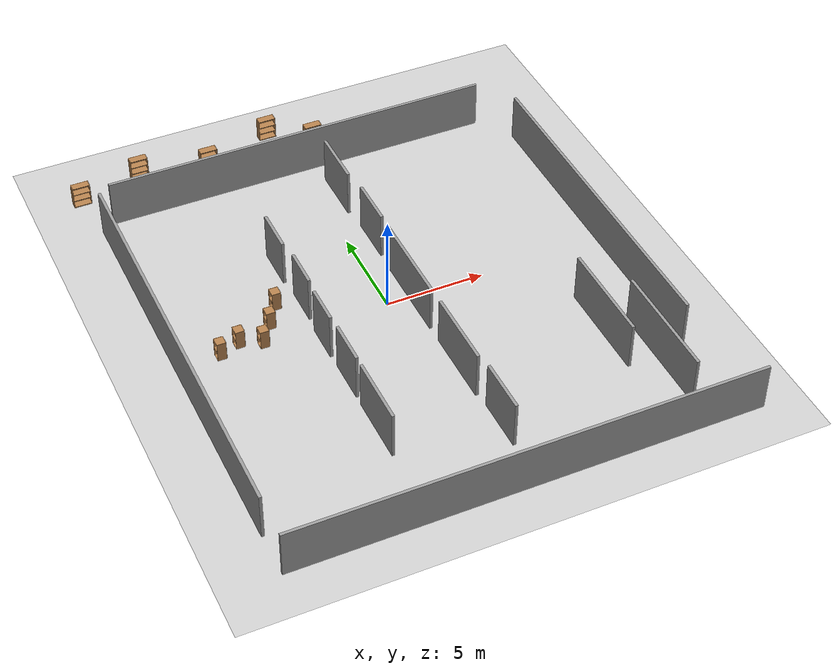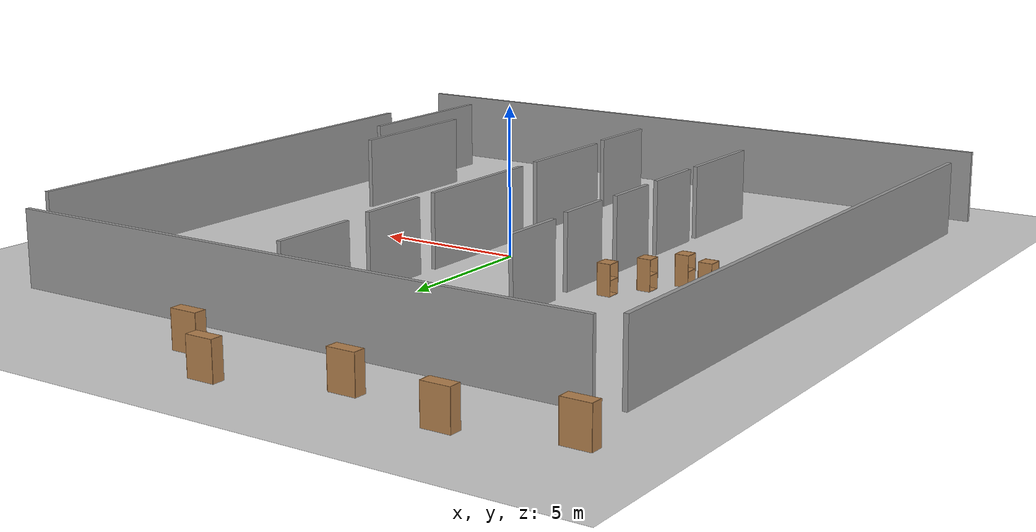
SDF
<sdf version="1.6">
 <world name="default">
  <model name="ground_plane">
   <static>1</static>
   <link name="link">
    <collision name="collision">
     <geometry><plane><normal>0 0 1</normal><size>100 100</size></plane></geometry>
     <surface><friction><ode><mu>100</mu><mu2>50</mu2></ode></friction></surface>
    </collision>
    <visual name="visual">
     <cast_shadows>0</cast_shadows>
     <geometry><plane><normal>0 0 1</normal><size>100 100</size></plane></geometry>
     <material>
      <script><uri>file://media/materials/scripts/gazebo.material</uri><name>Gazebo/Grey</name></script>
     </material>
    </visual>
   </link>
  </model>
  <model name="room13">
   <pose>0.954406 -1.0163 0 0 -0 0</pose>
   <link name="Wall_0">
    <collision name="Wall_0_Collision">
     <geometry><box><size>20.25 0.15 2.5</size></box></geometry>
     <pose>0 0 1.25 0 -0 0</pose>
    </collision>
    <visual name="Wall_0_Visual">
     <pose>0 0 1.25 0 -0 0</pose>
     <geometry><box><size>20.25 0.15 2.5</size></box></geometry>
     <material>
      <script><uri>file://media/materials/scripts/gazebo.material</uri><name>Gazebo/Grey</name></script>
      <ambient>1 1 1 1</ambient>
     </material>
     <meta><layer>0</layer></meta>
    </visual>
    <pose>-0.956756 12.1861 0 0 -0 0</pose>
   </link>
   <link name="Wall_10">
    <collision name="Wall_10_Collision">
     <geometry><box><size>2.75 0.15 2.5</size></box></geometry>
     <pose>0 0 1.25 0 -0 0</pose>
    </collision>
    <visual name="Wall_10_Visual">
     <pose>0 0 1.25 0 -0 0</pose>
     <geometry><box><size>2.75 0.15 2.5</size></box></geometry>
     <material>
      <script><uri>file://media/materials/scripts/gazebo.material</uri><name>Gazebo/Grey</name></script>
      <ambient>1 1 1 1</ambient>
     </material>
     <meta><layer>0</layer></meta>
    </visual>
    <pose>0.401491 -8.32568 0 0 -0 -1.5708</pose>
   </link>
   <link name="Wall_12">
    <collision name="Wall_12_Collision">
     <geometry><box><size>3 0.15 2.5</size></box></geometry>
     <pose>0 0 1.25 0 -0 0</pose>
    </collision>
    <visual name="Wall_12_Visual">
     <pose>0 0 1.25 0 -0 0</pose>
     <geometry><box><size>3 0.15 2.5</size></box></geometry>
     <material>
      <script><uri>file://media/materials/scripts/gazebo.material</uri><name>Gazebo/Grey</name></script>
      <ambient>1 1 1 1</ambient>
     </material>
     <meta><layer>0</layer></meta>
    </visual>
    <pose>0.055689 9.53105 0 0 -0 -1.5708</pose>
   </link>
   <link name="Wall_15">
    <collision name="Wall_15_Collision">
     <geometry><box><size>17.5 0.15 2.5</size></box></geometry>
     <pose>0 0 1.25 0 -0 0</pose>
    </collision>
    <visual name="Wall_15_Visual">
     <pose>0 0 1.25 0 -0 0</pose>
     <geometry><box><size>17.5 0.15 2.5</size></box></geometry>
     <material>
      <script><uri>file://media/materials/scripts/gazebo.material</uri><name>Gazebo/Grey</name></script>
      <ambient>1 1 1 1</ambient>
     </material>
     <meta><layer>0</layer></meta>
    </visual>
    <pose>10.5096 1.53625 0 0 -0 -1.5708</pose>
   </link>
   <link name="Wall_17">
    <collision name="Wall_17_Collision">
     <geometry><box><size>23.5 0.15 2.5</size></box></geometry>
     <pose>0 0 1.25 0 -0 0</pose>
    </collision>
    <visual name="Wall_17_Visual">
     <pose>0 0 1.25 0 -0 0</pose>
     <geometry><box><size>23.5 0.15 2.5</size></box></geometry>
     <material>
      <script><uri>file://media/materials/scripts/gazebo.material</uri><name>Gazebo/Grey</name></script>
      <ambient>1 1 1 1</ambient>
     </material>
     <meta><layer>0</layer></meta>
    </visual>
    <pose>0.026601 -12.1861 0 0 -0 0</pose>
   </link>
   <link name="Wall_19">
    <collision name="Wall_19_Collision">
     <geometry><box><size>6 0.15 2.5</size></box></geometry>
     <pose>0 0 1.25 0 -0 0</pose>
    </collision>
    <visual name="Wall_19_Visual">
     <pose>0 0 1.25 0 -0 0</pose>
     <geometry><box><size>6 0.15 2.5</size></box></geometry>
     <material>
      <script><uri>file://media/materials/scripts/gazebo.material</uri><name>Gazebo/Grey</name></script>
      <ambient>1 1 1 1</ambient>
     </material>
     <meta><layer>0</layer></meta>
    </visual>
    <pose>9.01995 -7.63647 0 0 -0 -1.5708</pose>
   </link>
   <link name="Wall_2">
    <collision name="Wall_2_Collision">
     <geometry><box><size>21.75 0.15 2.5</size></box></geometry>
     <pose>0 0 1.25 0 -0 0</pose>
    </collision>
    <visual name="Wall_2_Visual">
     <pose>0 0 1.25 0 -0 0</pose>
     <geometry><box><size>21.75 0.15 2.5</size></box></geometry>
     <material>
      <script><uri>file://media/materials/scripts/gazebo.material</uri><name>Gazebo/Grey</name></script>
      <ambient>1 1 1 1</ambient>
     </material>
     <meta><layer>0</layer></meta>
    </visual>
    <pose>-11.7016 0.874258 0 0 -0 -1.5708</pose>
   </link>
   <link name="Wall_21">
    <collision name="Wall_21_Collision">
     <geometry><box><size>5.25 0.15 2.5</size></box></geometry>
     <pose>0 0 1.25 0 -0 0</pose>
    </collision>
    <visual name="Wall_21_Visual">
     <pose>0 0 1.25 0 -0 0</pose>
     <geometry><box><size>5.25 0.15 2.5</size></box></geometry>
     <material>
      <script><uri>file://media/materials/scripts/gazebo.material</uri><name>Gazebo/Grey</name></script>
      <ambient>1 1 1 1</ambient>
     </material>
     <meta><layer>0</layer></meta>
    </visual>
    <pose>7.50375 -4.84809 0 0 -0 1.5708</pose>
   </link>
   <link name="Wall_23">
    <collision name="Wall_23_Collision">
     <geometry><box><size>3.5 0.15 2.5</size></box></geometry>
     <pose>0 0 1.25 0 -0 0</pose>
    </collision>
    <visual name="Wall_23_Visual">
     <pose>0 0 1.25 0 -0 0</pose>
     <geometry><box><size>3.5 0.15 2.5</size></box></geometry>
     <material>
      <script><uri>file://media/materials/scripts/gazebo.material</uri><name>Gazebo/Grey</name></script>
      <ambient>1 1 1 1</ambient>
     </material>
     <meta><layer>0</layer></meta>
    </visual>
    <pose>-4.75895 -6.30829 0 0 -0 1.5708</pose>
   </link>
   <link name="Wall_25">
    <collision name="Wall_25_Collision">
     <geometry><box><size>2.25 0.15 2.5</size></box></geometry>
     <pose>0 0 1.25 0 -0 0</pose>
    </collision>
    <visual name="Wall_25_Visual">
     <pose>0 0 1.25 0 -0 0</pose>
     <geometry><box><size>2.25 0.15 2.5</size></box></geometry>
     <material>
      <script><uri>file://media/materials/scripts/gazebo.material</uri><name>Gazebo/Grey</name></script>
      <ambient>1 1 1 1</ambient>
     </material>
     <meta><layer>0</layer></meta>
    </visual>
    <pose>-4.75895 -2.96986 0 0 -0 1.5708</pose>
   </link>
   <link name="Wall_27">
    <collision name="Wall_27_Collision">
     <geometry><box><size>2 0.15 2.5</size></box></geometry>
     <pose>0 0 1.25 0 -0 0</pose>
    </collision>
    <visual name="Wall_27_Visual">
     <pose>0 0 1.25 0 -0 0</pose>
     <geometry><box><size>2 0.15 2.5</size></box></geometry>
     <material>
      <script><uri>file://media/materials/scripts/gazebo.material</uri><name>Gazebo/Grey</name></script>
      <ambient>1 1 1 1</ambient>
     </material>
     <meta><layer>0</layer></meta>
    </visual>
    <pose>-4.81215 -0.195438 0 0 -0 1.5708</pose>
   </link>
   <link name="Wall_29">
    <collision name="Wall_29_Collision">
     <geometry><box><size>2 0.15 2.5</size></box></geometry>
     <pose>0 0 1.25 0 -0 0</pose>
    </collision>
    <visual name="Wall_29_Visual">
     <pose>0 0 1.25 0 -0 0</pose>
     <geometry><box><size>2 0.15 2.5</size></box></geometry>
     <material>
      <script><uri>file://media/materials/scripts/gazebo.material</uri><name>Gazebo/Grey</name></script>
      <ambient>1 1 1 1</ambient>
     </material>
     <meta><layer>0</layer></meta>
    </visual>
    <pose>-4.73235 2.57098 0 0 -0 1.5708</pose>
   </link>
   <link name="Wall_31">
    <collision name="Wall_31_Collision">
     <geometry><box><size>2.25 0.15 2.5</size></box></geometry>
     <pose>0 0 1.25 0 -0 0</pose>
    </collision>
    <visual name="Wall_31_Visual">
     <pose>0 0 1.25 0 -0 0</pose>
     <geometry><box><size>2.25 0.15 2.5</size></box></geometry>
     <material>
      <script><uri>file://media/materials/scripts/gazebo.material</uri><name>Gazebo/Grey</name></script>
      <ambient>1 1 1 1</ambient>
     </material>
     <meta><layer>0</layer></meta>
    </visual>
    <pose>-4.89195 5.59541 0 0 -0 1.5708</pose>
   </link>
   <link name="Wall_4">
    <collision name="Wall_4_Collision">
     <geometry><box><size>2.5 0.15 2.5</size></box></geometry>
     <pose>0 0 1.25 0 -0 0</pose>
    </collision>
    <visual name="Wall_4_Visual">
     <pose>0 0 1.25 0 -0 0</pose>
     <geometry><box><size>2.5 0.15 2.5</size></box></geometry>
     <material>
      <script><uri>file://media/materials/scripts/gazebo.material</uri><name>Gazebo/Grey</name></script>
      <ambient>1 1 1 1</ambient>
     </material>
     <meta><layer>0</layer></meta>
    </visual>
    <pose>0.24189 5.61584 0 0 -0 -1.5708</pose>
   </link>
   <link name="Wall_6">
    <collision name="Wall_6_Collision">
     <geometry><box><size>5 0.15 2.5</size></box></geometry>
     <pose>0 0 1.25 0 -0 0</pose>
    </collision>
    <visual name="Wall_6_Visual">
     <pose>0 0 1.25 0 -0 0</pose>
     <geometry><box><size>5 0.15 2.5</size></box></geometry>
     <material>
      <script><uri>file://media/materials/scripts/gazebo.material</uri><name>Gazebo/Grey</name></script>
      <ambient>1 1 1 1</ambient>
     </material>
     <meta><layer>0</layer></meta>
    </visual>
    <pose>0.21529 1.1362 0 0 -0 -1.5708</pose>
   </link>
   <link name="Wall_8">
    <collision name="Wall_8_Collision">
     <geometry><box><size>4 0.15 2.5</size></box></geometry>
     <pose>0 0 1.25 0 -0 0</pose>
    </collision>
    <visual name="Wall_8_Visual">
     <pose>0 0 1.25 0 -0 0</pose>
     <geometry><box><size>4 0.15 2.5</size></box></geometry>
     <material>
      <script><uri>file://media/materials/scripts/gazebo.material</uri><name>Gazebo/Grey</name></script>
      <ambient>1 1 1 1</ambient>
     </material>
     <meta><layer>0</layer></meta>
    </visual>
    <pose>0.24189 -4.24245 0 0 -0 -1.5708</pose>
   </link>
   <static>1</static>
  </model>
  <model name="bookshelf">
   <static>1</static>
   <link name="link">
    <inertial><mass>1</mass></inertial>
    <collision name="back">
     <pose>0 0.005 0.6 0 -0 0</pose>
     <geometry><box><size>0.9 0.01 1.2</size></box></geometry>
    </collision>
    <visual name="visual1">
     <pose>0 0.005 0.6 0 -0 0</pose>
     <geometry><box><size>0.9 0.01 1.2</size></box></geometry>
     <material>
      <script><uri>file://media/materials/scripts/gazebo.material</uri><name>Gazebo/Wood</name></script>
     </material>
    </visual>
    <collision name="left_side">
     <pose>0.45 -0.195 0.6 0 -0 0</pose>
     <geometry><box><size>0.02 0.4 1.2</size></box></geometry>
    </collision>
    <visual name="visual2">
     <pose>0.45 -0.195 0.6 0 -0 0</pose>
     <geometry><box><size>0.02 0.4 1.2</size></box></geometry>
     <material>
      <script><uri>file://media/materials/scripts/gazebo.material</uri><name>Gazebo/Wood</name></script>
     </material>
    </visual>
    <collision name="right_side">
     <pose>-0.45 -0.195 0.6 0 -0 0</pose>
     <geometry><box><size>0.02 0.4 1.2</size></box></geometry>
    </collision>
    <visual name="visual3">
     <pose>-0.45 -0.195 0.6 0 -0 0</pose>
     <geometry><box><size>0.02 0.4 1.2</size></box></geometry>
     <material>
      <script><uri>file://media/materials/scripts/gazebo.material</uri><name>Gazebo/Wood</name></script>
     </material>
    </visual>
    <collision name="bottom">
     <pose>0 -0.195 0.03 0 -0 0</pose>
     <geometry><box><size>0.88 0.4 0.06</size></box></geometry>
    </collision>
    <visual name="visual4">
     <pose>0 -0.195 0.03 0 -0 0</pose>
     <geometry><box><size>0.88 0.4 0.06</size></box></geometry>
     <material>
      <script><uri>file://media/materials/scripts/gazebo.material</uri><name>Gazebo/Wood</name></script>
     </material>
    </visual>
    <collision name="top">
     <pose>0 -0.195 1.19 0 -0 0</pose>
     <geometry><box><size>0.88 0.4 0.02</size></box></geometry>
    </collision>
    <visual name="visual5">
     <pose>0 -0.195 1.19 0 -0 0</pose>
     <geometry><box><size>0.88 0.4 0.02</size></box></geometry>
     <material>
      <script><uri>file://media/materials/scripts/gazebo.material</uri><name>Gazebo/Wood</name></script>
     </material>
    </visual>
    <collision name="low_shelf">
     <pose>0 -0.195 0.43 0 -0 0</pose>
     <geometry><box><size>0.88 0.4 0.02</size></box></geometry>
    </collision>
    <visual name="visual6">
     <pose>0 -0.195 0.43 0 -0 0</pose>
     <geometry><box><size>0.88 0.4 0.02</size></box></geometry>
     <material>
      <script><uri>file://media/materials/scripts/gazebo.material</uri><name>Gazebo/Wood</name></script>
     </material>
    </visual>
    <collision name="high_shelf">
     <pose>0 -0.195 0.8 0 -0 0</pose>
     <geometry><box><size>0.88 0.4 0.02</size></box></geometry>
    </collision>
    <visual name="visual7">
     <pose>0 -0.195 0.8 0 -0 0</pose>
     <geometry><box><size>0.88 0.4 0.02</size></box></geometry>
     <material>
      <script><uri>file://media/materials/scripts/gazebo.material</uri><name>Gazebo/Wood</name></script>
     </material>
    </visual>
   </link>
   <pose>-11.0786 13.5048 0 0 -0 0</pose>
  </model>
  <model name="bookshelf_0">
   <static>1</static>
   <link name="link">
    <inertial><mass>1</mass></inertial>
    <collision name="back">
     <pose>0 0.005 0.6 0 -0 0</pose>
     <geometry><box><size>0.9 0.01 1.2</size></box></geometry>
    </collision>
    <visual name="visual1">
     <pose>0 0.005 0.6 0 -0 0</pose>
     <geometry><box><size>0.9 0.01 1.2</size></box></geometry>
     <material>
      <script><uri>file://media/materials/scripts/gazebo.material</uri><name>Gazebo/Wood</name></script>
     </material>
    </visual>
    <collision name="left_side">
     <pose>0.45 -0.195 0.6 0 -0 0</pose>
     <geometry><box><size>0.02 0.4 1.2</size></box></geometry>
    </collision>
    <visual name="visual2">
     <pose>0.45 -0.195 0.6 0 -0 0</pose>
     <geometry><box><size>0.02 0.4 1.2</size></box></geometry>
     <material>
      <script><uri>file://media/materials/scripts/gazebo.material</uri><name>Gazebo/Wood</name></script>
     </material>
    </visual>
    <collision name="right_side">
     <pose>-0.45 -0.195 0.6 0 -0 0</pose>
     <geometry><box><size>0.02 0.4 1.2</size></box></geometry>
    </collision>
    <visual name="visual3">
     <pose>-0.45 -0.195 0.6 0 -0 0</pose>
     <geometry><box><size>0.02 0.4 1.2</size></box></geometry>
     <material>
      <script><uri>file://media/materials/scripts/gazebo.material</uri><name>Gazebo/Wood</name></script>
     </material>
    </visual>
    <collision name="bottom">
     <pose>0 -0.195 0.03 0 -0 0</pose>
     <geometry><box><size>0.88 0.4 0.06</size></box></geometry>
    </collision>
    <visual name="visual4">
     <pose>0 -0.195 0.03 0 -0 0</pose>
     <geometry><box><size>0.88 0.4 0.06</size></box></geometry>
     <material>
      <script><uri>file://media/materials/scripts/gazebo.material</uri><name>Gazebo/Wood</name></script>
     </material>
    </visual>
    <collision name="top">
     <pose>0 -0.195 1.19 0 -0 0</pose>
     <geometry><box><size>0.88 0.4 0.02</size></box></geometry>
    </collision>
    <visual name="visual5">
     <pose>0 -0.195 1.19 0 -0 0</pose>
     <geometry><box><size>0.88 0.4 0.02</size></box></geometry>
     <material>
      <script><uri>file://media/materials/scripts/gazebo.material</uri><name>Gazebo/Wood</name></script>
     </material>
    </visual>
    <collision name="low_shelf">
     <pose>0 -0.195 0.43 0 -0 0</pose>
     <geometry><box><size>0.88 0.4 0.02</size></box></geometry>
    </collision>
    <visual name="visual6">
     <pose>0 -0.195 0.43 0 -0 0</pose>
     <geometry><box><size>0.88 0.4 0.02</size></box></geometry>
     <material>
      <script><uri>file://media/materials/scripts/gazebo.material</uri><name>Gazebo/Wood</name></script>
     </material>
    </visual>
    <collision name="high_shelf">
     <pose>0 -0.195 0.8 0 -0 0</pose>
     <geometry><box><size>0.88 0.4 0.02</size></box></geometry>
    </collision>
    <visual name="visual7">
     <pose>0 -0.195 0.8 0 -0 0</pose>
     <geometry><box><size>0.88 0.4 0.02</size></box></geometry>
     <material>
      <script><uri>file://media/materials/scripts/gazebo.material</uri><name>Gazebo/Wood</name></script>
     </material>
    </visual>
   </link>
   <pose>-7.72125 14.3757 0 0 -0 0</pose>
  </model>
  <model name="bookshelf_1">
   <static>1</static>
   <link name="link">
    <inertial><mass>1</mass></inertial>
    <collision name="back">
     <pose>0 0.005 0.6 0 -0 0</pose>
     <geometry><box><size>0.9 0.01 1.2</size></box></geometry>
    </collision>
    <visual name="visual1">
     <pose>0 0.005 0.6 0 -0 0</pose>
     <geometry><box><size>0.9 0.01 1.2</size></box></geometry>
     <material>
      <script><uri>file://media/materials/scripts/gazebo.material</uri><name>Gazebo/Wood</name></script>
     </material>
    </visual>
    <collision name="left_side">
     <pose>0.45 -0.195 0.6 0 -0 0</pose>
     <geometry><box><size>0.02 0.4 1.2</size></box></geometry>
    </collision>
    <visual name="visual2">
     <pose>0.45 -0.195 0.6 0 -0 0</pose>
     <geometry><box><size>0.02 0.4 1.2</size></box></geometry>
     <material>
      <script><uri>file://media/materials/scripts/gazebo.material</uri><name>Gazebo/Wood</name></script>
     </material>
    </visual>
    <collision name="right_side">
     <pose>-0.45 -0.195 0.6 0 -0 0</pose>
     <geometry><box><size>0.02 0.4 1.2</size></box></geometry>
    </collision>
    <visual name="visual3">
     <pose>-0.45 -0.195 0.6 0 -0 0</pose>
     <geometry><box><size>0.02 0.4 1.2</size></box></geometry>
     <material>
      <script><uri>file://media/materials/scripts/gazebo.material</uri><name>Gazebo/Wood</name></script>
     </material>
    </visual>
    <collision name="bottom">
     <pose>0 -0.195 0.03 0 -0 0</pose>
     <geometry><box><size>0.88 0.4 0.06</size></box></geometry>
    </collision>
    <visual name="visual4">
     <pose>0 -0.195 0.03 0 -0 0</pose>
     <geometry><box><size>0.88 0.4 0.06</size></box></geometry>
     <material>
      <script><uri>file://media/materials/scripts/gazebo.material</uri><name>Gazebo/Wood</name></script>
     </material>
    </visual>
    <collision name="top">
     <pose>0 -0.195 1.19 0 -0 0</pose>
     <geometry><box><size>0.88 0.4 0.02</size></box></geometry>
    </collision>
    <visual name="visual5">
     <pose>0 -0.195 1.19 0 -0 0</pose>
     <geometry><box><size>0.88 0.4 0.02</size></box></geometry>
     <material>
      <script><uri>file://media/materials/scripts/gazebo.material</uri><name>Gazebo/Wood</name></script>
     </material>
    </visual>
    <collision name="low_shelf">
     <pose>0 -0.195 0.43 0 -0 0</pose>
     <geometry><box><size>0.88 0.4 0.02</size></box></geometry>
    </collision>
    <visual name="visual6">
     <pose>0 -0.195 0.43 0 -0 0</pose>
     <geometry><box><size>0.88 0.4 0.02</size></box></geometry>
     <material>
      <script><uri>file://media/materials/scripts/gazebo.material</uri><name>Gazebo/Wood</name></script>
     </material>
    </visual>
    <collision name="high_shelf">
     <pose>0 -0.195 0.8 0 -0 0</pose>
     <geometry><box><size>0.88 0.4 0.02</size></box></geometry>
    </collision>
    <visual name="visual7">
     <pose>0 -0.195 0.8 0 -0 0</pose>
     <geometry><box><size>0.88 0.4 0.02</size></box></geometry>
     <material>
      <script><uri>file://media/materials/scripts/gazebo.material</uri><name>Gazebo/Wood</name></script>
     </material>
    </visual>
   </link>
   <pose>-4.19439 13.5916 0 0 -0 0</pose>
  </model>
  <model name="bookshelf_2">
   <static>1</static>
   <link name="link">
    <inertial><mass>1</mass></inertial>
    <collision name="back">
     <pose>0 0.005 0.6 0 -0 0</pose>
     <geometry><box><size>0.9 0.01 1.2</size></box></geometry>
    </collision>
    <visual name="visual1">
     <pose>0 0.005 0.6 0 -0 0</pose>
     <geometry><box><size>0.9 0.01 1.2</size></box></geometry>
     <material>
      <script><uri>file://media/materials/scripts/gazebo.material</uri><name>Gazebo/Wood</name></script>
     </material>
    </visual>
    <collision name="left_side">
     <pose>0.45 -0.195 0.6 0 -0 0</pose>
     <geometry><box><size>0.02 0.4 1.2</size></box></geometry>
    </collision>
    <visual name="visual2">
     <pose>0.45 -0.195 0.6 0 -0 0</pose>
     <geometry><box><size>0.02 0.4 1.2</size></box></geometry>
     <material>
      <script><uri>file://media/materials/scripts/gazebo.material</uri><name>Gazebo/Wood</name></script>
     </material>
    </visual>
    <collision name="right_side">
     <pose>-0.45 -0.195 0.6 0 -0 0</pose>
     <geometry><box><size>0.02 0.4 1.2</size></box></geometry>
    </collision>
    <visual name="visual3">
     <pose>-0.45 -0.195 0.6 0 -0 0</pose>
     <geometry><box><size>0.02 0.4 1.2</size></box></geometry>
     <material>
      <script><uri>file://media/materials/scripts/gazebo.material</uri><name>Gazebo/Wood</name></script>
     </material>
    </visual>
    <collision name="bottom">
     <pose>0 -0.195 0.03 0 -0 0</pose>
     <geometry><box><size>0.88 0.4 0.06</size></box></geometry>
    </collision>
    <visual name="visual4">
     <pose>0 -0.195 0.03 0 -0 0</pose>
     <geometry><box><size>0.88 0.4 0.06</size></box></geometry>
     <material>
      <script><uri>file://media/materials/scripts/gazebo.material</uri><name>Gazebo/Wood</name></script>
     </material>
    </visual>
    <collision name="top">
     <pose>0 -0.195 1.19 0 -0 0</pose>
     <geometry><box><size>0.88 0.4 0.02</size></box></geometry>
    </collision>
    <visual name="visual5">
     <pose>0 -0.195 1.19 0 -0 0</pose>
     <geometry><box><size>0.88 0.4 0.02</size></box></geometry>
     <material>
      <script><uri>file://media/materials/scripts/gazebo.material</uri><name>Gazebo/Wood</name></script>
     </material>
    </visual>
    <collision name="low_shelf">
     <pose>0 -0.195 0.43 0 -0 0</pose>
     <geometry><box><size>0.88 0.4 0.02</size></box></geometry>
    </collision>
    <visual name="visual6">
     <pose>0 -0.195 0.43 0 -0 0</pose>
     <geometry><box><size>0.88 0.4 0.02</size></box></geometry>
     <material>
      <script><uri>file://media/materials/scripts/gazebo.material</uri><name>Gazebo/Wood</name></script>
     </material>
    </visual>
    <collision name="high_shelf">
     <pose>0 -0.195 0.8 0 -0 0</pose>
     <geometry><box><size>0.88 0.4 0.02</size></box></geometry>
    </collision>
    <visual name="visual7">
     <pose>0 -0.195 0.8 0 -0 0</pose>
     <geometry><box><size>0.88 0.4 0.02</size></box></geometry>
     <material>
      <script><uri>file://media/materials/scripts/gazebo.material</uri><name>Gazebo/Wood</name></script>
     </material>
    </visual>
   </link>
   <pose>-0.499283 14.7908 0 0 -0 0</pose>
  </model>
  <model name="bookshelf_3">
   <static>1</static>
   <link name="link">
    <inertial><mass>1</mass></inertial>
    <collision name="back">
     <pose>0 0.005 0.6 0 -0 0</pose>
     <geometry><box><size>0.9 0.01 1.2</size></box></geometry>
    </collision>
    <visual name="visual1">
     <pose>0 0.005 0.6 0 -0 0</pose>
     <geometry><box><size>0.9 0.01 1.2</size></box></geometry>
     <material>
      <script><uri>file://media/materials/scripts/gazebo.material</uri><name>Gazebo/Wood</name></script>
     </material>
    </visual>
    <collision name="left_side">
     <pose>0.45 -0.195 0.6 0 -0 0</pose>
     <geometry><box><size>0.02 0.4 1.2</size></box></geometry>
    </collision>
    <visual name="visual2">
     <pose>0.45 -0.195 0.6 0 -0 0</pose>
     <geometry><box><size>0.02 0.4 1.2</size></box></geometry>
     <material>
      <script><uri>file://media/materials/scripts/gazebo.material</uri><name>Gazebo/Wood</name></script>
     </material>
    </visual>
    <collision name="right_side">
     <pose>-0.45 -0.195 0.6 0 -0 0</pose>
     <geometry><box><size>0.02 0.4 1.2</size></box></geometry>
    </collision>
    <visual name="visual3">
     <pose>-0.45 -0.195 0.6 0 -0 0</pose>
     <geometry><box><size>0.02 0.4 1.2</size></box></geometry>
     <material>
      <script><uri>file://media/materials/scripts/gazebo.material</uri><name>Gazebo/Wood</name></script>
     </material>
    </visual>
    <collision name="bottom">
     <pose>0 -0.195 0.03 0 -0 0</pose>
     <geometry><box><size>0.88 0.4 0.06</size></box></geometry>
    </collision>
    <visual name="visual4">
     <pose>0 -0.195 0.03 0 -0 0</pose>
     <geometry><box><size>0.88 0.4 0.06</size></box></geometry>
     <material>
      <script><uri>file://media/materials/scripts/gazebo.material</uri><name>Gazebo/Wood</name></script>
     </material>
    </visual>
    <collision name="top">
     <pose>0 -0.195 1.19 0 -0 0</pose>
     <geometry><box><size>0.88 0.4 0.02</size></box></geometry>
    </collision>
    <visual name="visual5">
     <pose>0 -0.195 1.19 0 -0 0</pose>
     <geometry><box><size>0.88 0.4 0.02</size></box></geometry>
     <material>
      <script><uri>file://media/materials/scripts/gazebo.material</uri><name>Gazebo/Wood</name></script>
     </material>
    </visual>
    <collision name="low_shelf">
     <pose>0 -0.195 0.43 0 -0 0</pose>
     <geometry><box><size>0.88 0.4 0.02</size></box></geometry>
    </collision>
    <visual name="visual6">
     <pose>0 -0.195 0.43 0 -0 0</pose>
     <geometry><box><size>0.88 0.4 0.02</size></box></geometry>
     <material>
      <script><uri>file://media/materials/scripts/gazebo.material</uri><name>Gazebo/Wood</name></script>
     </material>
    </visual>
    <collision name="high_shelf">
     <pose>0 -0.195 0.8 0 -0 0</pose>
     <geometry><box><size>0.88 0.4 0.02</size></box></geometry>
    </collision>
    <visual name="visual7">
     <pose>0 -0.195 0.8 0 -0 0</pose>
     <geometry><box><size>0.88 0.4 0.02</size></box></geometry>
     <material>
      <script><uri>file://media/materials/scripts/gazebo.material</uri><name>Gazebo/Wood</name></script>
     </material>
    </visual>
   </link>
   <pose>1.52908 13.309 0 0 -0 0</pose>
  </model>
  <model name="cabinet_9">
   <static>1</static>
   <link name="cabinet_bottom_plate">
    <inertial>
     <pose>0 0 -1 0 -0 0</pose>
     <inertia><ixx>2.05</ixx><ixy>0</ixy><ixz>0</ixz><iyy>2.05</iyy><iyz>0</iyz><izz>2.05</izz></inertia>
     <mass>25</mass>
    </inertial>
    <collision name="cabinet_bottom_plate_geom">
     <pose>0 0 0.01 0 -0 0</pose>
     <geometry><box><size>0.45 0.45 0.02</size></box></geometry>
    </collision>
    <visual name="cabinet_bottom_plate_geom_visual">
     <pose>0 0 0.01 0 -0 0</pose>
     <geometry><box><size>0.45 0.45 0.02</size></box></geometry>
     <material>
      <script><uri>file://media/materials/scripts/gazebo.material</uri><name>Gazebo/Wood</name></script>
     </material>
    </visual>
    <collision name="cabinet_bottom_plate_geom_cabinet_back_plate">
     <pose>0.235 0 0.51 0 -0 0</pose>
     <geometry><box><size>0.02 0.45 1.02</size></box></geometry>
    </collision>
    <visual name="cabinet_bottom_plate_geom_cabinet_back_plate_visual">
     <pose>0.235 0 0.51 0 -0 0</pose>
     <geometry><box><size>0.02 0.45 1.02</size></box></geometry>
     <material>
      <script><uri>file://media/materials/scripts/gazebo.material</uri><name>Gazebo/Wood</name></script>
     </material>
    </visual>
    <collision name="cabinet_bottom_plate_geom_cabinet_left_plate">
     <pose>0 0.235 0.51 0 -0 0</pose>
     <geometry><box><size>0.45 0.02 1.02</size></box></geometry>
    </collision>
    <visual name="cabinet_bottom_plate_geom_cabinet_left_plate_visual">
     <pose>0 0.235 0.51 0 -0 0</pose>
     <geometry><box><size>0.45 0.02 1.02</size></box></geometry>
     <material>
      <script><uri>file://media/materials/scripts/gazebo.material</uri><name>Gazebo/Wood</name></script>
     </material>
    </visual>
    <collision name="cabinet_bottom_plate_geom_cabinet_middle_plate">
     <pose>0 0 0.51 0 -0 0</pose>
     <geometry><box><size>0.45 0.45 0.02</size></box></geometry>
    </collision>
    <visual name="cabinet_bottom_plate_geom_cabinet_middle_plate_visual">
     <pose>0 0 0.51 0 -0 0</pose>
     <geometry><box><size>0.45 0.45 0.02</size></box></geometry>
     <material>
      <script><uri>file://media/materials/scripts/gazebo.material</uri><name>Gazebo/Wood</name></script>
     </material>
    </visual>
    <collision name="cabinet_bottom_plate_geom_cabinet_right_plate">
     <pose>0 -0.235 0.51 0 -0 0</pose>
     <geometry><box><size>0.45 0.02 1.02</size></box></geometry>
    </collision>
    <visual name="cabinet_bottom_plate_geom_cabinet_right_plate_visual">
     <pose>0 -0.235 0.51 0 -0 0</pose>
     <geometry><box><size>0.45 0.02 1.02</size></box></geometry>
     <material>
      <script><uri>file://media/materials/scripts/gazebo.material</uri><name>Gazebo/Wood</name></script>
     </material>
    </visual>
    <collision name="cabinet_bottom_plate_geom_cabinet_top_plate">
     <pose>0 0 1.01 0 -0 0</pose>
     <geometry><box><size>0.45 0.45 0.02</size></box></geometry>
    </collision>
    <visual name="cabinet_bottom_plate_geom_cabinet_top_plate_visual">
     <pose>0 0 1.01 0 -0 0</pose>
     <geometry><box><size>0.45 0.45 0.02</size></box></geometry>
     <material>
      <script><uri>file://media/materials/scripts/gazebo.material</uri><name>Gazebo/Wood</name></script>
     </material>
    </visual>
   </link>
   <pose>-8.56223 -0.059686 0 0 -0 0</pose>
  </model>
  <model name="cabinet_10">
   <static>1</static>
   <link name="cabinet_bottom_plate">
    <inertial>
     <pose>0 0 -1 0 -0 0</pose>
     <inertia><ixx>2.05</ixx><ixy>0</ixy><ixz>0</ixz><iyy>2.05</iyy><iyz>0</iyz><izz>2.05</izz></inertia>
     <mass>25</mass>
    </inertial>
    <collision name="cabinet_bottom_plate_geom">
     <pose>0 0 0.01 0 -0 0</pose>
     <geometry><box><size>0.45 0.45 0.02</size></box></geometry>
    </collision>
    <visual name="cabinet_bottom_plate_geom_visual">
     <pose>0 0 0.01 0 -0 0</pose>
     <geometry><box><size>0.45 0.45 0.02</size></box></geometry>
     <material>
      <script><uri>file://media/materials/scripts/gazebo.material</uri><name>Gazebo/Wood</name></script>
     </material>
    </visual>
    <collision name="cabinet_bottom_plate_geom_cabinet_back_plate">
     <pose>0.235 0 0.51 0 -0 0</pose>
     <geometry><box><size>0.02 0.45 1.02</size></box></geometry>
    </collision>
    <visual name="cabinet_bottom_plate_geom_cabinet_back_plate_visual">
     <pose>0.235 0 0.51 0 -0 0</pose>
     <geometry><box><size>0.02 0.45 1.02</size></box></geometry>
     <material>
      <script><uri>file://media/materials/scripts/gazebo.material</uri><name>Gazebo/Wood</name></script>
     </material>
    </visual>
    <collision name="cabinet_bottom_plate_geom_cabinet_left_plate">
     <pose>0 0.235 0.51 0 -0 0</pose>
     <geometry><box><size>0.45 0.02 1.02</size></box></geometry>
    </collision>
    <visual name="cabinet_bottom_plate_geom_cabinet_left_plate_visual">
     <pose>0 0.235 0.51 0 -0 0</pose>
     <geometry><box><size>0.45 0.02 1.02</size></box></geometry>
     <material>
      <script><uri>file://media/materials/scripts/gazebo.material</uri><name>Gazebo/Wood</name></script>
     </material>
    </visual>
    <collision name="cabinet_bottom_plate_geom_cabinet_middle_plate">
     <pose>0 0 0.51 0 -0 0</pose>
     <geometry><box><size>0.45 0.45 0.02</size></box></geometry>
    </collision>
    <visual name="cabinet_bottom_plate_geom_cabinet_middle_plate_visual">
     <pose>0 0 0.51 0 -0 0</pose>
     <geometry><box><size>0.45 0.45 0.02</size></box></geometry>
     <material>
      <script><uri>file://media/materials/scripts/gazebo.material</uri><name>Gazebo/Wood</name></script>
     </material>
    </visual>
    <collision name="cabinet_bottom_plate_geom_cabinet_right_plate">
     <pose>0 -0.235 0.51 0 -0 0</pose>
     <geometry><box><size>0.45 0.02 1.02</size></box></geometry>
    </collision>
    <visual name="cabinet_bottom_plate_geom_cabinet_right_plate_visual">
     <pose>0 -0.235 0.51 0 -0 0</pose>
     <geometry><box><size>0.45 0.02 1.02</size></box></geometry>
     <material>
      <script><uri>file://media/materials/scripts/gazebo.material</uri><name>Gazebo/Wood</name></script>
     </material>
    </visual>
    <collision name="cabinet_bottom_plate_geom_cabinet_top_plate">
     <pose>0 0 1.01 0 -0 0</pose>
     <geometry><box><size>0.45 0.45 0.02</size></box></geometry>
    </collision>
    <visual name="cabinet_bottom_plate_geom_cabinet_top_plate_visual">
     <pose>0 0 1.01 0 -0 0</pose>
     <geometry><box><size>0.45 0.45 0.02</size></box></geometry>
     <material>
      <script><uri>file://media/materials/scripts/gazebo.material</uri><name>Gazebo/Wood</name></script>
     </material>
    </visual>
   </link>
   <pose>-7.50118 0.327728 0 0 -0 0</pose>
  </model>
  <model name="cabinet_11">
   <static>1</static>
   <link name="cabinet_bottom_plate">
    <inertial>
     <pose>0 0 -1 0 -0 0</pose>
     <inertia><ixx>2.05</ixx><ixy>0</ixy><ixz>0</ixz><iyy>2.05</iyy><iyz>0</iyz><izz>2.05</izz></inertia>
     <mass>25</mass>
    </inertial>
    <collision name="cabinet_bottom_plate_geom">
     <pose>0 0 0.01 0 -0 0</pose>
     <geometry><box><size>0.45 0.45 0.02</size></box></geometry>
    </collision>
    <visual name="cabinet_bottom_plate_geom_visual">
     <pose>0 0 0.01 0 -0 0</pose>
     <geometry><box><size>0.45 0.45 0.02</size></box></geometry>
     <material>
      <script><uri>file://media/materials/scripts/gazebo.material</uri><name>Gazebo/Wood</name></script>
     </material>
    </visual>
    <collision name="cabinet_bottom_plate_geom_cabinet_back_plate">
     <pose>0.235 0 0.51 0 -0 0</pose>
     <geometry><box><size>0.02 0.45 1.02</size></box></geometry>
    </collision>
    <visual name="cabinet_bottom_plate_geom_cabinet_back_plate_visual">
     <pose>0.235 0 0.51 0 -0 0</pose>
     <geometry><box><size>0.02 0.45 1.02</size></box></geometry>
     <material>
      <script><uri>file://media/materials/scripts/gazebo.material</uri><name>Gazebo/Wood</name></script>
     </material>
    </visual>
    <collision name="cabinet_bottom_plate_geom_cabinet_left_plate">
     <pose>0 0.235 0.51 0 -0 0</pose>
     <geometry><box><size>0.45 0.02 1.02</size></box></geometry>
    </collision>
    <visual name="cabinet_bottom_plate_geom_cabinet_left_plate_visual">
     <pose>0 0.235 0.51 0 -0 0</pose>
     <geometry><box><size>0.45 0.02 1.02</size></box></geometry>
     <material>
      <script><uri>file://media/materials/scripts/gazebo.material</uri><name>Gazebo/Wood</name></script>
     </material>
    </visual>
    <collision name="cabinet_bottom_plate_geom_cabinet_middle_plate">
     <pose>0 0 0.51 0 -0 0</pose>
     <geometry><box><size>0.45 0.45 0.02</size></box></geometry>
    </collision>
    <visual name="cabinet_bottom_plate_geom_cabinet_middle_plate_visual">
     <pose>0 0 0.51 0 -0 0</pose>
     <geometry><box><size>0.45 0.45 0.02</size></box></geometry>
     <material>
      <script><uri>file://media/materials/scripts/gazebo.material</uri><name>Gazebo/Wood</name></script>
     </material>
    </visual>
    <collision name="cabinet_bottom_plate_geom_cabinet_right_plate">
     <pose>0 -0.235 0.51 0 -0 0</pose>
     <geometry><box><size>0.45 0.02 1.02</size></box></geometry>
    </collision>
    <visual name="cabinet_bottom_plate_geom_cabinet_right_plate_visual">
     <pose>0 -0.235 0.51 0 -0 0</pose>
     <geometry><box><size>0.45 0.02 1.02</size></box></geometry>
     <material>
      <script><uri>file://media/materials/scripts/gazebo.material</uri><name>Gazebo/Wood</name></script>
     </material>
    </visual>
    <collision name="cabinet_bottom_plate_geom_cabinet_top_plate">
     <pose>0 0 1.01 0 -0 0</pose>
     <geometry><box><size>0.45 0.45 0.02</size></box></geometry>
    </collision>
    <visual name="cabinet_bottom_plate_geom_cabinet_top_plate_visual">
     <pose>0 0 1.01 0 -0 0</pose>
     <geometry><box><size>0.45 0.45 0.02</size></box></geometry>
     <material>
      <script><uri>file://media/materials/scripts/gazebo.material</uri><name>Gazebo/Wood</name></script>
     </material>
    </visual>
   </link>
   <pose>-6.44757 -0.139304 0 0 -0 0</pose>
  </model>
  <model name="cabinet_12">
   <static>1</static>
   <link name="cabinet_bottom_plate">
    <inertial>
     <pose>0 0 -1 0 -0 0</pose>
     <inertia><ixx>2.05</ixx><ixy>0</ixy><ixz>0</ixz><iyy>2.05</iyy><iyz>0</iyz><izz>2.05</izz></inertia>
     <mass>25</mass>
    </inertial>
    <collision name="cabinet_bottom_plate_geom">
     <pose>0 0 0.01 0 -0 0</pose>
     <geometry><box><size>0.45 0.45 0.02</size></box></geometry>
    </collision>
    <visual name="cabinet_bottom_plate_geom_visual">
     <pose>0 0 0.01 0 -0 0</pose>
     <geometry><box><size>0.45 0.45 0.02</size></box></geometry>
     <material>
      <script><uri>file://media/materials/scripts/gazebo.material</uri><name>Gazebo/Wood</name></script>
     </material>
    </visual>
    <collision name="cabinet_bottom_plate_geom_cabinet_back_plate">
     <pose>0.235 0 0.51 0 -0 0</pose>
     <geometry><box><size>0.02 0.45 1.02</size></box></geometry>
    </collision>
    <visual name="cabinet_bottom_plate_geom_cabinet_back_plate_visual">
     <pose>0.235 0 0.51 0 -0 0</pose>
     <geometry><box><size>0.02 0.45 1.02</size></box></geometry>
     <material>
      <script><uri>file://media/materials/scripts/gazebo.material</uri><name>Gazebo/Wood</name></script>
     </material>
    </visual>
    <collision name="cabinet_bottom_plate_geom_cabinet_left_plate">
     <pose>0 0.235 0.51 0 -0 0</pose>
     <geometry><box><size>0.45 0.02 1.02</size></box></geometry>
    </collision>
    <visual name="cabinet_bottom_plate_geom_cabinet_left_plate_visual">
     <pose>0 0.235 0.51 0 -0 0</pose>
     <geometry><box><size>0.45 0.02 1.02</size></box></geometry>
     <material>
      <script><uri>file://media/materials/scripts/gazebo.material</uri><name>Gazebo/Wood</name></script>
     </material>
    </visual>
    <collision name="cabinet_bottom_plate_geom_cabinet_middle_plate">
     <pose>0 0 0.51 0 -0 0</pose>
     <geometry><box><size>0.45 0.45 0.02</size></box></geometry>
    </collision>
    <visual name="cabinet_bottom_plate_geom_cabinet_middle_plate_visual">
     <pose>0 0 0.51 0 -0 0</pose>
     <geometry><box><size>0.45 0.45 0.02</size></box></geometry>
     <material>
      <script><uri>file://media/materials/scripts/gazebo.material</uri><name>Gazebo/Wood</name></script>
     </material>
    </visual>
    <collision name="cabinet_bottom_plate_geom_cabinet_right_plate">
     <pose>0 -0.235 0.51 0 -0 0</pose>
     <geometry><box><size>0.45 0.02 1.02</size></box></geometry>
    </collision>
    <visual name="cabinet_bottom_plate_geom_cabinet_right_plate_visual">
     <pose>0 -0.235 0.51 0 -0 0</pose>
     <geometry><box><size>0.45 0.02 1.02</size></box></geometry>
     <material>
      <script><uri>file://media/materials/scripts/gazebo.material</uri><name>Gazebo/Wood</name></script>
     </material>
    </visual>
    <collision name="cabinet_bottom_plate_geom_cabinet_top_plate">
     <pose>0 0 1.01 0 -0 0</pose>
     <geometry><box><size>0.45 0.45 0.02</size></box></geometry>
    </collision>
    <visual name="cabinet_bottom_plate_geom_cabinet_top_plate_visual">
     <pose>0 0 1.01 0 -0 0</pose>
     <geometry><box><size>0.45 0.45 0.02</size></box></geometry>
     <material>
      <script><uri>file://media/materials/scripts/gazebo.material</uri><name>Gazebo/Wood</name></script>
     </material>
    </visual>
   </link>
   <pose>-5.71627 0.922085 0 0 -0 0</pose>
  </model>
  <model name="cabinet_13">
   <static>1</static>
   <link name="cabinet_bottom_plate">
    <inertial>
     <pose>0 0 -1 0 -0 0</pose>
     <inertia><ixx>2.05</ixx><ixy>0</ixy><ixz>0</ixz><iyy>2.05</iyy><iyz>0</iyz><izz>2.05</izz></inertia>
     <mass>25</mass>
    </inertial>
    <collision name="cabinet_bottom_plate_geom">
     <pose>0 0 0.01 0 -0 0</pose>
     <geometry><box><size>0.45 0.45 0.02</size></box></geometry>
    </collision>
    <visual name="cabinet_bottom_plate_geom_visual">
     <pose>0 0 0.01 0 -0 0</pose>
     <geometry><box><size>0.45 0.45 0.02</size></box></geometry>
     <material>
      <script><uri>file://media/materials/scripts/gazebo.material</uri><name>Gazebo/Wood</name></script>
     </material>
    </visual>
    <collision name="cabinet_bottom_plate_geom_cabinet_back_plate">
     <pose>0.235 0 0.51 0 -0 0</pose>
     <geometry><box><size>0.02 0.45 1.02</size></box></geometry>
    </collision>
    <visual name="cabinet_bottom_plate_geom_cabinet_back_plate_visual">
     <pose>0.235 0 0.51 0 -0 0</pose>
     <geometry><box><size>0.02 0.45 1.02</size></box></geometry>
     <material>
      <script><uri>file://media/materials/scripts/gazebo.material</uri><name>Gazebo/Wood</name></script>
     </material>
    </visual>
    <collision name="cabinet_bottom_plate_geom_cabinet_left_plate">
     <pose>0 0.235 0.51 0 -0 0</pose>
     <geometry><box><size>0.45 0.02 1.02</size></box></geometry>
    </collision>
    <visual name="cabinet_bottom_plate_geom_cabinet_left_plate_visual">
     <pose>0 0.235 0.51 0 -0 0</pose>
     <geometry><box><size>0.45 0.02 1.02</size></box></geometry>
     <material>
      <script><uri>file://media/materials/scripts/gazebo.material</uri><name>Gazebo/Wood</name></script>
     </material>
    </visual>
    <collision name="cabinet_bottom_plate_geom_cabinet_middle_plate">
     <pose>0 0 0.51 0 -0 0</pose>
     <geometry><box><size>0.45 0.45 0.02</size></box></geometry>
    </collision>
    <visual name="cabinet_bottom_plate_geom_cabinet_middle_plate_visual">
     <pose>0 0 0.51 0 -0 0</pose>
     <geometry><box><size>0.45 0.45 0.02</size></box></geometry>
     <material>
      <script><uri>file://media/materials/scripts/gazebo.material</uri><name>Gazebo/Wood</name></script>
     </material>
    </visual>
    <collision name="cabinet_bottom_plate_geom_cabinet_right_plate">
     <pose>0 -0.235 0.51 0 -0 0</pose>
     <geometry><box><size>0.45 0.02 1.02</size></box></geometry>
    </collision>
    <visual name="cabinet_bottom_plate_geom_cabinet_right_plate_visual">
     <pose>0 -0.235 0.51 0 -0 0</pose>
     <geometry><box><size>0.45 0.02 1.02</size></box></geometry>
     <material>
      <script><uri>file://media/materials/scripts/gazebo.material</uri><name>Gazebo/Wood</name></script>
     </material>
    </visual>
    <collision name="cabinet_bottom_plate_geom_cabinet_top_plate">
     <pose>0 0 1.01 0 -0 0</pose>
     <geometry><box><size>0.45 0.45 0.02</size></box></geometry>
    </collision>
    <visual name="cabinet_bottom_plate_geom_cabinet_top_plate_visual">
     <pose>0 0 1.01 0 -0 0</pose>
     <geometry><box><size>0.45 0.45 0.02</size></box></geometry>
     <material>
      <script><uri>file://media/materials/scripts/gazebo.material</uri><name>Gazebo/Wood</name></script>
     </material>
    </visual>
   </link>
   <pose>-4.98722 2.06138 0 0 -0 0</pose>
  </model>
 </world>
</sdf>
